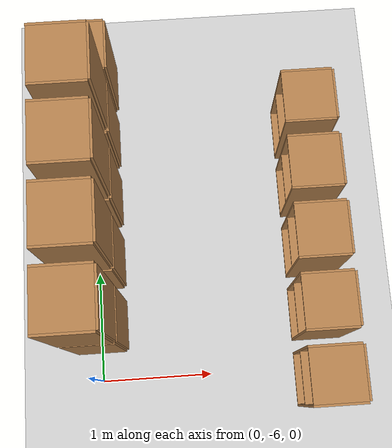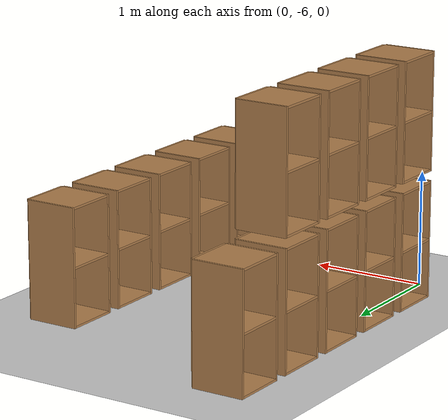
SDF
<sdf version="1.7">
 <world name="default">
  <model name="ground_plane">
   <static>1</static>
   <link name="link">
    <collision name="collision">
     <geometry><plane><normal>0 0 1</normal><size>100 100</size></plane></geometry>
     <surface><friction><ode><mu>100</mu><mu2>50</mu2></ode></friction></surface>
    </collision>
    <visual name="visual">
     <cast_shadows>0</cast_shadows>
     <geometry><plane><normal>0 0 1</normal><size>100 100</size></plane></geometry>
     <material>
      <script><uri>file://media/materials/scripts/gazebo.material</uri><name>Gazebo/Grey</name></script>
     </material>
    </visual>
   </link>
  </model>
  <model name="cabinet_35">
   <static>1</static>
   <link name="cabinet_bottom_plate">
    <inertial>
     <pose>0 0 -1 0 -0 0</pose>
     <inertia><ixx>2.05</ixx><ixy>0</ixy><ixz>0</ixz><iyy>2.05</iyy><iyz>0</iyz><izz>2.05</izz></inertia>
     <mass>25</mass>
    </inertial>
    <collision name="cabinet_bottom_plate_geom">
     <pose>0 0 0.01 0 -0 0</pose>
     <geometry><box><size>0.45 0.45 0.02</size></box></geometry>
    </collision>
    <visual name="cabinet_bottom_plate_geom_visual">
     <pose>0 0 0.01 0 -0 0</pose>
     <geometry><box><size>0.45 0.45 0.02</size></box></geometry>
     <material>
      <script><uri>file://media/materials/scripts/gazebo.material</uri><name>Gazebo/Wood</name></script>
     </material>
    </visual>
    <collision name="cabinet_bottom_plate_geom_cabinet_back_plate">
     <pose>0.235 0 0.51 0 -0 0</pose>
     <geometry><box><size>0.02 0.45 1.02</size></box></geometry>
    </collision>
    <visual name="cabinet_bottom_plate_geom_cabinet_back_plate_visual">
     <pose>0.235 0 0.51 0 -0 0</pose>
     <geometry><box><size>0.02 0.45 1.02</size></box></geometry>
     <material>
      <script><uri>file://media/materials/scripts/gazebo.material</uri><name>Gazebo/Wood</name></script>
     </material>
    </visual>
    <collision name="cabinet_bottom_plate_geom_cabinet_left_plate">
     <pose>0 0.235 0.51 0 -0 0</pose>
     <geometry><box><size>0.45 0.02 1.02</size></box></geometry>
    </collision>
    <visual name="cabinet_bottom_plate_geom_cabinet_left_plate_visual">
     <pose>0 0.235 0.51 0 -0 0</pose>
     <geometry><box><size>0.45 0.02 1.02</size></box></geometry>
     <material>
      <script><uri>file://media/materials/scripts/gazebo.material</uri><name>Gazebo/Wood</name></script>
     </material>
    </visual>
    <collision name="cabinet_bottom_plate_geom_cabinet_middle_plate">
     <pose>0 0 0.51 0 -0 0</pose>
     <geometry><box><size>0.45 0.45 0.02</size></box></geometry>
    </collision>
    <visual name="cabinet_bottom_plate_geom_cabinet_middle_plate_visual">
     <pose>0 0 0.51 0 -0 0</pose>
     <geometry><box><size>0.45 0.45 0.02</size></box></geometry>
     <material>
      <script><uri>file://media/materials/scripts/gazebo.material</uri><name>Gazebo/Wood</name></script>
     </material>
    </visual>
    <collision name="cabinet_bottom_plate_geom_cabinet_right_plate">
     <pose>0 -0.235 0.51 0 -0 0</pose>
     <geometry><box><size>0.45 0.02 1.02</size></box></geometry>
    </collision>
    <visual name="cabinet_bottom_plate_geom_cabinet_right_plate_visual">
     <pose>0 -0.235 0.51 0 -0 0</pose>
     <geometry><box><size>0.45 0.02 1.02</size></box></geometry>
     <material>
      <script><uri>file://media/materials/scripts/gazebo.material</uri><name>Gazebo/Wood</name></script>
     </material>
    </visual>
    <collision name="cabinet_bottom_plate_geom_cabinet_top_plate">
     <pose>0 0 1.01 0 -0 0</pose>
     <geometry><box><size>0.45 0.45 0.02</size></box></geometry>
    </collision>
    <visual name="cabinet_bottom_plate_geom_cabinet_top_plate_visual">
     <pose>0 0 1.01 0 -0 0</pose>
     <geometry><box><size>0.45 0.45 0.02</size></box></geometry>
     <material>
      <script><uri>file://media/materials/scripts/gazebo.material</uri><name>Gazebo/Wood</name></script>
     </material>
    </visual>
   </link>
   <pose>2 -3.7 0 0 -0 0</pose>
  </model>
  <model name="cabinet_36">
   <static>1</static>
   <link name="cabinet_bottom_plate">
    <inertial>
     <pose>0 0 -1 0 -0 0</pose>
     <inertia><ixx>2.05</ixx><ixy>0</ixy><ixz>0</ixz><iyy>2.05</iyy><iyz>0</iyz><izz>2.05</izz></inertia>
     <mass>25</mass>
    </inertial>
    <collision name="cabinet_bottom_plate_geom">
     <pose>0 0 0.01 0 -0 0</pose>
     <geometry><box><size>0.45 0.45 0.02</size></box></geometry>
    </collision>
    <visual name="cabinet_bottom_plate_geom_visual">
     <pose>0 0 0.01 0 -0 0</pose>
     <geometry><box><size>0.45 0.45 0.02</size></box></geometry>
     <material>
      <script><uri>file://media/materials/scripts/gazebo.material</uri><name>Gazebo/Wood</name></script>
     </material>
    </visual>
    <collision name="cabinet_bottom_plate_geom_cabinet_back_plate">
     <pose>0.235 0 0.51 0 -0 0</pose>
     <geometry><box><size>0.02 0.45 1.02</size></box></geometry>
    </collision>
    <visual name="cabinet_bottom_plate_geom_cabinet_back_plate_visual">
     <pose>0.235 0 0.51 0 -0 0</pose>
     <geometry><box><size>0.02 0.45 1.02</size></box></geometry>
     <material>
      <script><uri>file://media/materials/scripts/gazebo.material</uri><name>Gazebo/Wood</name></script>
     </material>
    </visual>
    <collision name="cabinet_bottom_plate_geom_cabinet_left_plate">
     <pose>0 0.235 0.51 0 -0 0</pose>
     <geometry><box><size>0.45 0.02 1.02</size></box></geometry>
    </collision>
    <visual name="cabinet_bottom_plate_geom_cabinet_left_plate_visual">
     <pose>0 0.235 0.51 0 -0 0</pose>
     <geometry><box><size>0.45 0.02 1.02</size></box></geometry>
     <material>
      <script><uri>file://media/materials/scripts/gazebo.material</uri><name>Gazebo/Wood</name></script>
     </material>
    </visual>
    <collision name="cabinet_bottom_plate_geom_cabinet_middle_plate">
     <pose>0 0 0.51 0 -0 0</pose>
     <geometry><box><size>0.45 0.45 0.02</size></box></geometry>
    </collision>
    <visual name="cabinet_bottom_plate_geom_cabinet_middle_plate_visual">
     <pose>0 0 0.51 0 -0 0</pose>
     <geometry><box><size>0.45 0.45 0.02</size></box></geometry>
     <material>
      <script><uri>file://media/materials/scripts/gazebo.material</uri><name>Gazebo/Wood</name></script>
     </material>
    </visual>
    <collision name="cabinet_bottom_plate_geom_cabinet_right_plate">
     <pose>0 -0.235 0.51 0 -0 0</pose>
     <geometry><box><size>0.45 0.02 1.02</size></box></geometry>
    </collision>
    <visual name="cabinet_bottom_plate_geom_cabinet_right_plate_visual">
     <pose>0 -0.235 0.51 0 -0 0</pose>
     <geometry><box><size>0.45 0.02 1.02</size></box></geometry>
     <material>
      <script><uri>file://media/materials/scripts/gazebo.material</uri><name>Gazebo/Wood</name></script>
     </material>
    </visual>
    <collision name="cabinet_bottom_plate_geom_cabinet_top_plate">
     <pose>0 0 1.01 0 -0 0</pose>
     <geometry><box><size>0.45 0.45 0.02</size></box></geometry>
    </collision>
    <visual name="cabinet_bottom_plate_geom_cabinet_top_plate_visual">
     <pose>0 0 1.01 0 -0 0</pose>
     <geometry><box><size>0.45 0.45 0.02</size></box></geometry>
     <material>
      <script><uri>file://media/materials/scripts/gazebo.material</uri><name>Gazebo/Wood</name></script>
     </material>
    </visual>
   </link>
   <pose>2 -4.3 0 0 -0 0</pose>
  </model>
  <model name="cabinet_37">
   <static>1</static>
   <link name="cabinet_bottom_plate">
    <inertial>
     <pose>0 0 -1 0 -0 0</pose>
     <inertia><ixx>2.05</ixx><ixy>0</ixy><ixz>0</ixz><iyy>2.05</iyy><iyz>0</iyz><izz>2.05</izz></inertia>
     <mass>25</mass>
    </inertial>
    <collision name="cabinet_bottom_plate_geom">
     <pose>0 0 0.01 0 -0 0</pose>
     <geometry><box><size>0.45 0.45 0.02</size></box></geometry>
    </collision>
    <visual name="cabinet_bottom_plate_geom_visual">
     <pose>0 0 0.01 0 -0 0</pose>
     <geometry><box><size>0.45 0.45 0.02</size></box></geometry>
     <material>
      <script><uri>file://media/materials/scripts/gazebo.material</uri><name>Gazebo/Wood</name></script>
     </material>
    </visual>
    <collision name="cabinet_bottom_plate_geom_cabinet_back_plate">
     <pose>0.235 0 0.51 0 -0 0</pose>
     <geometry><box><size>0.02 0.45 1.02</size></box></geometry>
    </collision>
    <visual name="cabinet_bottom_plate_geom_cabinet_back_plate_visual">
     <pose>0.235 0 0.51 0 -0 0</pose>
     <geometry><box><size>0.02 0.45 1.02</size></box></geometry>
     <material>
      <script><uri>file://media/materials/scripts/gazebo.material</uri><name>Gazebo/Wood</name></script>
     </material>
    </visual>
    <collision name="cabinet_bottom_plate_geom_cabinet_left_plate">
     <pose>0 0.235 0.51 0 -0 0</pose>
     <geometry><box><size>0.45 0.02 1.02</size></box></geometry>
    </collision>
    <visual name="cabinet_bottom_plate_geom_cabinet_left_plate_visual">
     <pose>0 0.235 0.51 0 -0 0</pose>
     <geometry><box><size>0.45 0.02 1.02</size></box></geometry>
     <material>
      <script><uri>file://media/materials/scripts/gazebo.material</uri><name>Gazebo/Wood</name></script>
     </material>
    </visual>
    <collision name="cabinet_bottom_plate_geom_cabinet_middle_plate">
     <pose>0 0 0.51 0 -0 0</pose>
     <geometry><box><size>0.45 0.45 0.02</size></box></geometry>
    </collision>
    <visual name="cabinet_bottom_plate_geom_cabinet_middle_plate_visual">
     <pose>0 0 0.51 0 -0 0</pose>
     <geometry><box><size>0.45 0.45 0.02</size></box></geometry>
     <material>
      <script><uri>file://media/materials/scripts/gazebo.material</uri><name>Gazebo/Wood</name></script>
     </material>
    </visual>
    <collision name="cabinet_bottom_plate_geom_cabinet_right_plate">
     <pose>0 -0.235 0.51 0 -0 0</pose>
     <geometry><box><size>0.45 0.02 1.02</size></box></geometry>
    </collision>
    <visual name="cabinet_bottom_plate_geom_cabinet_right_plate_visual">
     <pose>0 -0.235 0.51 0 -0 0</pose>
     <geometry><box><size>0.45 0.02 1.02</size></box></geometry>
     <material>
      <script><uri>file://media/materials/scripts/gazebo.material</uri><name>Gazebo/Wood</name></script>
     </material>
    </visual>
    <collision name="cabinet_bottom_plate_geom_cabinet_top_plate">
     <pose>0 0 1.01 0 -0 0</pose>
     <geometry><box><size>0.45 0.45 0.02</size></box></geometry>
    </collision>
    <visual name="cabinet_bottom_plate_geom_cabinet_top_plate_visual">
     <pose>0 0 1.01 0 -0 0</pose>
     <geometry><box><size>0.45 0.45 0.02</size></box></geometry>
     <material>
      <script><uri>file://media/materials/scripts/gazebo.material</uri><name>Gazebo/Wood</name></script>
     </material>
    </visual>
   </link>
   <pose>2 -4.9 0 0 -0 0</pose>
  </model>
  <model name="cabinet_38">
   <static>1</static>
   <link name="cabinet_bottom_plate">
    <inertial>
     <pose>0 0 -1 0 -0 0</pose>
     <inertia><ixx>2.05</ixx><ixy>0</ixy><ixz>0</ixz><iyy>2.05</iyy><iyz>0</iyz><izz>2.05</izz></inertia>
     <mass>25</mass>
    </inertial>
    <collision name="cabinet_bottom_plate_geom">
     <pose>0 0 0.01 0 -0 0</pose>
     <geometry><box><size>0.45 0.45 0.02</size></box></geometry>
    </collision>
    <visual name="cabinet_bottom_plate_geom_visual">
     <pose>0 0 0.01 0 -0 0</pose>
     <geometry><box><size>0.45 0.45 0.02</size></box></geometry>
     <material>
      <script><uri>file://media/materials/scripts/gazebo.material</uri><name>Gazebo/Wood</name></script>
     </material>
    </visual>
    <collision name="cabinet_bottom_plate_geom_cabinet_back_plate">
     <pose>0.235 0 0.51 0 -0 0</pose>
     <geometry><box><size>0.02 0.45 1.02</size></box></geometry>
    </collision>
    <visual name="cabinet_bottom_plate_geom_cabinet_back_plate_visual">
     <pose>0.235 0 0.51 0 -0 0</pose>
     <geometry><box><size>0.02 0.45 1.02</size></box></geometry>
     <material>
      <script><uri>file://media/materials/scripts/gazebo.material</uri><name>Gazebo/Wood</name></script>
     </material>
    </visual>
    <collision name="cabinet_bottom_plate_geom_cabinet_left_plate">
     <pose>0 0.235 0.51 0 -0 0</pose>
     <geometry><box><size>0.45 0.02 1.02</size></box></geometry>
    </collision>
    <visual name="cabinet_bottom_plate_geom_cabinet_left_plate_visual">
     <pose>0 0.235 0.51 0 -0 0</pose>
     <geometry><box><size>0.45 0.02 1.02</size></box></geometry>
     <material>
      <script><uri>file://media/materials/scripts/gazebo.material</uri><name>Gazebo/Wood</name></script>
     </material>
    </visual>
    <collision name="cabinet_bottom_plate_geom_cabinet_middle_plate">
     <pose>0 0 0.51 0 -0 0</pose>
     <geometry><box><size>0.45 0.45 0.02</size></box></geometry>
    </collision>
    <visual name="cabinet_bottom_plate_geom_cabinet_middle_plate_visual">
     <pose>0 0 0.51 0 -0 0</pose>
     <geometry><box><size>0.45 0.45 0.02</size></box></geometry>
     <material>
      <script><uri>file://media/materials/scripts/gazebo.material</uri><name>Gazebo/Wood</name></script>
     </material>
    </visual>
    <collision name="cabinet_bottom_plate_geom_cabinet_right_plate">
     <pose>0 -0.235 0.51 0 -0 0</pose>
     <geometry><box><size>0.45 0.02 1.02</size></box></geometry>
    </collision>
    <visual name="cabinet_bottom_plate_geom_cabinet_right_plate_visual">
     <pose>0 -0.235 0.51 0 -0 0</pose>
     <geometry><box><size>0.45 0.02 1.02</size></box></geometry>
     <material>
      <script><uri>file://media/materials/scripts/gazebo.material</uri><name>Gazebo/Wood</name></script>
     </material>
    </visual>
    <collision name="cabinet_bottom_plate_geom_cabinet_top_plate">
     <pose>0 0 1.01 0 -0 0</pose>
     <geometry><box><size>0.45 0.45 0.02</size></box></geometry>
    </collision>
    <visual name="cabinet_bottom_plate_geom_cabinet_top_plate_visual">
     <pose>0 0 1.01 0 -0 0</pose>
     <geometry><box><size>0.45 0.45 0.02</size></box></geometry>
     <material>
      <script><uri>file://media/materials/scripts/gazebo.material</uri><name>Gazebo/Wood</name></script>
     </material>
    </visual>
   </link>
   <pose>2 -5.5 0 0 -0 0</pose>
  </model>
  <model name="cabinet_39">
   <static>1</static>
   <link name="cabinet_bottom_plate">
    <inertial>
     <pose>0 0 -1 0 -0 0</pose>
     <inertia><ixx>2.05</ixx><ixy>0</ixy><ixz>0</ixz><iyy>2.05</iyy><iyz>0</iyz><izz>2.05</izz></inertia>
     <mass>25</mass>
    </inertial>
    <collision name="cabinet_bottom_plate_geom">
     <pose>0 0 0.01 0 -0 0</pose>
     <geometry><box><size>0.45 0.45 0.02</size></box></geometry>
    </collision>
    <visual name="cabinet_bottom_plate_geom_visual">
     <pose>0 0 0.01 0 -0 0</pose>
     <geometry><box><size>0.45 0.45 0.02</size></box></geometry>
     <material>
      <script><uri>file://media/materials/scripts/gazebo.material</uri><name>Gazebo/Wood</name></script>
     </material>
    </visual>
    <collision name="cabinet_bottom_plate_geom_cabinet_back_plate">
     <pose>0.235 0 0.51 0 -0 0</pose>
     <geometry><box><size>0.02 0.45 1.02</size></box></geometry>
    </collision>
    <visual name="cabinet_bottom_plate_geom_cabinet_back_plate_visual">
     <pose>0.235 0 0.51 0 -0 0</pose>
     <geometry><box><size>0.02 0.45 1.02</size></box></geometry>
     <material>
      <script><uri>file://media/materials/scripts/gazebo.material</uri><name>Gazebo/Wood</name></script>
     </material>
    </visual>
    <collision name="cabinet_bottom_plate_geom_cabinet_left_plate">
     <pose>0 0.235 0.51 0 -0 0</pose>
     <geometry><box><size>0.45 0.02 1.02</size></box></geometry>
    </collision>
    <visual name="cabinet_bottom_plate_geom_cabinet_left_plate_visual">
     <pose>0 0.235 0.51 0 -0 0</pose>
     <geometry><box><size>0.45 0.02 1.02</size></box></geometry>
     <material>
      <script><uri>file://media/materials/scripts/gazebo.material</uri><name>Gazebo/Wood</name></script>
     </material>
    </visual>
    <collision name="cabinet_bottom_plate_geom_cabinet_middle_plate">
     <pose>0 0 0.51 0 -0 0</pose>
     <geometry><box><size>0.45 0.45 0.02</size></box></geometry>
    </collision>
    <visual name="cabinet_bottom_plate_geom_cabinet_middle_plate_visual">
     <pose>0 0 0.51 0 -0 0</pose>
     <geometry><box><size>0.45 0.45 0.02</size></box></geometry>
     <material>
      <script><uri>file://media/materials/scripts/gazebo.material</uri><name>Gazebo/Wood</name></script>
     </material>
    </visual>
    <collision name="cabinet_bottom_plate_geom_cabinet_right_plate">
     <pose>0 -0.235 0.51 0 -0 0</pose>
     <geometry><box><size>0.45 0.02 1.02</size></box></geometry>
    </collision>
    <visual name="cabinet_bottom_plate_geom_cabinet_right_plate_visual">
     <pose>0 -0.235 0.51 0 -0 0</pose>
     <geometry><box><size>0.45 0.02 1.02</size></box></geometry>
     <material>
      <script><uri>file://media/materials/scripts/gazebo.material</uri><name>Gazebo/Wood</name></script>
     </material>
    </visual>
    <collision name="cabinet_bottom_plate_geom_cabinet_top_plate">
     <pose>0 0 1.01 0 -0 0</pose>
     <geometry><box><size>0.45 0.45 0.02</size></box></geometry>
    </collision>
    <visual name="cabinet_bottom_plate_geom_cabinet_top_plate_visual">
     <pose>0 0 1.01 0 -0 0</pose>
     <geometry><box><size>0.45 0.45 0.02</size></box></geometry>
     <material>
      <script><uri>file://media/materials/scripts/gazebo.material</uri><name>Gazebo/Wood</name></script>
     </material>
    </visual>
   </link>
   <pose>2 -6.1 0 0 -0 0</pose>
  </model>
  <model name="cabinet_47">
   <static>1</static>
   <link name="cabinet_bottom_plate">
    <inertial>
     <pose>0 0 -1 0 -0 0</pose>
     <inertia><ixx>2.05</ixx><ixy>0</ixy><ixz>0</ixz><iyy>2.05</iyy><iyz>0</iyz><izz>2.05</izz></inertia>
     <mass>25</mass>
    </inertial>
    <collision name="cabinet_bottom_plate_geom">
     <pose>0 0 0.01 0 -0 0</pose>
     <geometry><box><size>0.45 0.45 0.02</size></box></geometry>
    </collision>
    <visual name="cabinet_bottom_plate_geom_visual">
     <pose>0 0 0.01 0 -0 0</pose>
     <geometry><box><size>0.45 0.45 0.02</size></box></geometry>
     <material>
      <script><uri>file://media/materials/scripts/gazebo.material</uri><name>Gazebo/Wood</name></script>
     </material>
    </visual>
    <collision name="cabinet_bottom_plate_geom_cabinet_back_plate">
     <pose>0.235 0 0.51 0 -0 0</pose>
     <geometry><box><size>0.02 0.45 1.02</size></box></geometry>
    </collision>
    <visual name="cabinet_bottom_plate_geom_cabinet_back_plate_visual">
     <pose>0.235 0 0.51 0 -0 0</pose>
     <geometry><box><size>0.02 0.45 1.02</size></box></geometry>
     <material>
      <script><uri>file://media/materials/scripts/gazebo.material</uri><name>Gazebo/Wood</name></script>
     </material>
    </visual>
    <collision name="cabinet_bottom_plate_geom_cabinet_left_plate">
     <pose>0 0.235 0.51 0 -0 0</pose>
     <geometry><box><size>0.45 0.02 1.02</size></box></geometry>
    </collision>
    <visual name="cabinet_bottom_plate_geom_cabinet_left_plate_visual">
     <pose>0 0.235 0.51 0 -0 0</pose>
     <geometry><box><size>0.45 0.02 1.02</size></box></geometry>
     <material>
      <script><uri>file://media/materials/scripts/gazebo.material</uri><name>Gazebo/Wood</name></script>
     </material>
    </visual>
    <collision name="cabinet_bottom_plate_geom_cabinet_middle_plate">
     <pose>0 0 0.51 0 -0 0</pose>
     <geometry><box><size>0.45 0.45 0.02</size></box></geometry>
    </collision>
    <visual name="cabinet_bottom_plate_geom_cabinet_middle_plate_visual">
     <pose>0 0 0.51 0 -0 0</pose>
     <geometry><box><size>0.45 0.45 0.02</size></box></geometry>
     <material>
      <script><uri>file://media/materials/scripts/gazebo.material</uri><name>Gazebo/Wood</name></script>
     </material>
    </visual>
    <collision name="cabinet_bottom_plate_geom_cabinet_right_plate">
     <pose>0 -0.235 0.51 0 -0 0</pose>
     <geometry><box><size>0.45 0.02 1.02</size></box></geometry>
    </collision>
    <visual name="cabinet_bottom_plate_geom_cabinet_right_plate_visual">
     <pose>0 -0.235 0.51 0 -0 0</pose>
     <geometry><box><size>0.45 0.02 1.02</size></box></geometry>
     <material>
      <script><uri>file://media/materials/scripts/gazebo.material</uri><name>Gazebo/Wood</name></script>
     </material>
    </visual>
    <collision name="cabinet_bottom_plate_geom_cabinet_top_plate">
     <pose>0 0 1.01 0 -0 0</pose>
     <geometry><box><size>0.45 0.45 0.02</size></box></geometry>
    </collision>
    <visual name="cabinet_bottom_plate_geom_cabinet_top_plate_visual">
     <pose>0 0 1.01 0 -0 0</pose>
     <geometry><box><size>0.45 0.45 0.02</size></box></geometry>
     <material>
      <script><uri>file://media/materials/scripts/gazebo.material</uri><name>Gazebo/Wood</name></script>
     </material>
    </visual>
   </link>
   <pose>0 -3.1 0 0 -0 0</pose>
  </model>
  <model name="cabinet_49">
   <static>1</static>
   <link name="cabinet_bottom_plate">
    <inertial>
     <pose>0 0 -1 0 -0 0</pose>
     <inertia><ixx>2.05</ixx><ixy>0</ixy><ixz>0</ixz><iyy>2.05</iyy><iyz>0</iyz><izz>2.05</izz></inertia>
     <mass>25</mass>
    </inertial>
    <collision name="cabinet_bottom_plate_geom">
     <pose>0 0 0.01 0 -0 0</pose>
     <geometry><box><size>0.45 0.45 0.02</size></box></geometry>
    </collision>
    <visual name="cabinet_bottom_plate_geom_visual">
     <pose>0 0 0.01 0 -0 0</pose>
     <geometry><box><size>0.45 0.45 0.02</size></box></geometry>
     <material>
      <script><uri>file://media/materials/scripts/gazebo.material</uri><name>Gazebo/Wood</name></script>
     </material>
    </visual>
    <collision name="cabinet_bottom_plate_geom_cabinet_back_plate">
     <pose>0.235 0 0.51 0 -0 0</pose>
     <geometry><box><size>0.02 0.45 1.02</size></box></geometry>
    </collision>
    <visual name="cabinet_bottom_plate_geom_cabinet_back_plate_visual">
     <pose>0.235 0 0.51 0 -0 0</pose>
     <geometry><box><size>0.02 0.45 1.02</size></box></geometry>
     <material>
      <script><uri>file://media/materials/scripts/gazebo.material</uri><name>Gazebo/Wood</name></script>
     </material>
    </visual>
    <collision name="cabinet_bottom_plate_geom_cabinet_left_plate">
     <pose>0 0.235 0.51 0 -0 0</pose>
     <geometry><box><size>0.45 0.02 1.02</size></box></geometry>
    </collision>
    <visual name="cabinet_bottom_plate_geom_cabinet_left_plate_visual">
     <pose>0 0.235 0.51 0 -0 0</pose>
     <geometry><box><size>0.45 0.02 1.02</size></box></geometry>
     <material>
      <script><uri>file://media/materials/scripts/gazebo.material</uri><name>Gazebo/Wood</name></script>
     </material>
    </visual>
    <collision name="cabinet_bottom_plate_geom_cabinet_middle_plate">
     <pose>0 0 0.51 0 -0 0</pose>
     <geometry><box><size>0.45 0.45 0.02</size></box></geometry>
    </collision>
    <visual name="cabinet_bottom_plate_geom_cabinet_middle_plate_visual">
     <pose>0 0 0.51 0 -0 0</pose>
     <geometry><box><size>0.45 0.45 0.02</size></box></geometry>
     <material>
      <script><uri>file://media/materials/scripts/gazebo.material</uri><name>Gazebo/Wood</name></script>
     </material>
    </visual>
    <collision name="cabinet_bottom_plate_geom_cabinet_right_plate">
     <pose>0 -0.235 0.51 0 -0 0</pose>
     <geometry><box><size>0.45 0.02 1.02</size></box></geometry>
    </collision>
    <visual name="cabinet_bottom_plate_geom_cabinet_right_plate_visual">
     <pose>0 -0.235 0.51 0 -0 0</pose>
     <geometry><box><size>0.45 0.02 1.02</size></box></geometry>
     <material>
      <script><uri>file://media/materials/scripts/gazebo.material</uri><name>Gazebo/Wood</name></script>
     </material>
    </visual>
    <collision name="cabinet_bottom_plate_geom_cabinet_top_plate">
     <pose>0 0 1.01 0 -0 0</pose>
     <geometry><box><size>0.45 0.45 0.02</size></box></geometry>
    </collision>
    <visual name="cabinet_bottom_plate_geom_cabinet_top_plate_visual">
     <pose>0 0 1.01 0 -0 0</pose>
     <geometry><box><size>0.45 0.45 0.02</size></box></geometry>
     <material>
      <script><uri>file://media/materials/scripts/gazebo.material</uri><name>Gazebo/Wood</name></script>
     </material>
    </visual>
   </link>
   <pose>0 -3.7 0 0 -0 0</pose>
  </model>
  <model name="cabinet_50">
   <static>1</static>
   <link name="cabinet_bottom_plate">
    <inertial>
     <pose>0 0 -1 0 -0 0</pose>
     <inertia><ixx>2.05</ixx><ixy>0</ixy><ixz>0</ixz><iyy>2.05</iyy><iyz>0</iyz><izz>2.05</izz></inertia>
     <mass>25</mass>
    </inertial>
    <collision name="cabinet_bottom_plate_geom">
     <pose>0 0 0.01 0 -0 0</pose>
     <geometry><box><size>0.45 0.45 0.02</size></box></geometry>
    </collision>
    <visual name="cabinet_bottom_plate_geom_visual">
     <pose>0 0 0.01 0 -0 0</pose>
     <geometry><box><size>0.45 0.45 0.02</size></box></geometry>
     <material>
      <script><uri>file://media/materials/scripts/gazebo.material</uri><name>Gazebo/Wood</name></script>
     </material>
    </visual>
    <collision name="cabinet_bottom_plate_geom_cabinet_back_plate">
     <pose>0.235 0 0.51 0 -0 0</pose>
     <geometry><box><size>0.02 0.45 1.02</size></box></geometry>
    </collision>
    <visual name="cabinet_bottom_plate_geom_cabinet_back_plate_visual">
     <pose>0.235 0 0.51 0 -0 0</pose>
     <geometry><box><size>0.02 0.45 1.02</size></box></geometry>
     <material>
      <script><uri>file://media/materials/scripts/gazebo.material</uri><name>Gazebo/Wood</name></script>
     </material>
    </visual>
    <collision name="cabinet_bottom_plate_geom_cabinet_left_plate">
     <pose>0 0.235 0.51 0 -0 0</pose>
     <geometry><box><size>0.45 0.02 1.02</size></box></geometry>
    </collision>
    <visual name="cabinet_bottom_plate_geom_cabinet_left_plate_visual">
     <pose>0 0.235 0.51 0 -0 0</pose>
     <geometry><box><size>0.45 0.02 1.02</size></box></geometry>
     <material>
      <script><uri>file://media/materials/scripts/gazebo.material</uri><name>Gazebo/Wood</name></script>
     </material>
    </visual>
    <collision name="cabinet_bottom_plate_geom_cabinet_middle_plate">
     <pose>0 0 0.51 0 -0 0</pose>
     <geometry><box><size>0.45 0.45 0.02</size></box></geometry>
    </collision>
    <visual name="cabinet_bottom_plate_geom_cabinet_middle_plate_visual">
     <pose>0 0 0.51 0 -0 0</pose>
     <geometry><box><size>0.45 0.45 0.02</size></box></geometry>
     <material>
      <script><uri>file://media/materials/scripts/gazebo.material</uri><name>Gazebo/Wood</name></script>
     </material>
    </visual>
    <collision name="cabinet_bottom_plate_geom_cabinet_right_plate">
     <pose>0 -0.235 0.51 0 -0 0</pose>
     <geometry><box><size>0.45 0.02 1.02</size></box></geometry>
    </collision>
    <visual name="cabinet_bottom_plate_geom_cabinet_right_plate_visual">
     <pose>0 -0.235 0.51 0 -0 0</pose>
     <geometry><box><size>0.45 0.02 1.02</size></box></geometry>
     <material>
      <script><uri>file://media/materials/scripts/gazebo.material</uri><name>Gazebo/Wood</name></script>
     </material>
    </visual>
    <collision name="cabinet_bottom_plate_geom_cabinet_top_plate">
     <pose>0 0 1.01 0 -0 0</pose>
     <geometry><box><size>0.45 0.45 0.02</size></box></geometry>
    </collision>
    <visual name="cabinet_bottom_plate_geom_cabinet_top_plate_visual">
     <pose>0 0 1.01 0 -0 0</pose>
     <geometry><box><size>0.45 0.45 0.02</size></box></geometry>
     <material>
      <script><uri>file://media/materials/scripts/gazebo.material</uri><name>Gazebo/Wood</name></script>
     </material>
    </visual>
   </link>
   <pose>0 -4.3 0 0 -0 0</pose>
  </model>
  <model name="cabinet_51">
   <static>1</static>
   <link name="cabinet_bottom_plate">
    <inertial>
     <pose>0 0 -1 0 -0 0</pose>
     <inertia><ixx>2.05</ixx><ixy>0</ixy><ixz>0</ixz><iyy>2.05</iyy><iyz>0</iyz><izz>2.05</izz></inertia>
     <mass>25</mass>
    </inertial>
    <collision name="cabinet_bottom_plate_geom">
     <pose>0 0 0.01 0 -0 0</pose>
     <geometry><box><size>0.45 0.45 0.02</size></box></geometry>
    </collision>
    <visual name="cabinet_bottom_plate_geom_visual">
     <pose>0 0 0.01 0 -0 0</pose>
     <geometry><box><size>0.45 0.45 0.02</size></box></geometry>
     <material>
      <script><uri>file://media/materials/scripts/gazebo.material</uri><name>Gazebo/Wood</name></script>
     </material>
    </visual>
    <collision name="cabinet_bottom_plate_geom_cabinet_back_plate">
     <pose>0.235 0 0.51 0 -0 0</pose>
     <geometry><box><size>0.02 0.45 1.02</size></box></geometry>
    </collision>
    <visual name="cabinet_bottom_plate_geom_cabinet_back_plate_visual">
     <pose>0.235 0 0.51 0 -0 0</pose>
     <geometry><box><size>0.02 0.45 1.02</size></box></geometry>
     <material>
      <script><uri>file://media/materials/scripts/gazebo.material</uri><name>Gazebo/Wood</name></script>
     </material>
    </visual>
    <collision name="cabinet_bottom_plate_geom_cabinet_left_plate">
     <pose>0 0.235 0.51 0 -0 0</pose>
     <geometry><box><size>0.45 0.02 1.02</size></box></geometry>
    </collision>
    <visual name="cabinet_bottom_plate_geom_cabinet_left_plate_visual">
     <pose>0 0.235 0.51 0 -0 0</pose>
     <geometry><box><size>0.45 0.02 1.02</size></box></geometry>
     <material>
      <script><uri>file://media/materials/scripts/gazebo.material</uri><name>Gazebo/Wood</name></script>
     </material>
    </visual>
    <collision name="cabinet_bottom_plate_geom_cabinet_middle_plate">
     <pose>0 0 0.51 0 -0 0</pose>
     <geometry><box><size>0.45 0.45 0.02</size></box></geometry>
    </collision>
    <visual name="cabinet_bottom_plate_geom_cabinet_middle_plate_visual">
     <pose>0 0 0.51 0 -0 0</pose>
     <geometry><box><size>0.45 0.45 0.02</size></box></geometry>
     <material>
      <script><uri>file://media/materials/scripts/gazebo.material</uri><name>Gazebo/Wood</name></script>
     </material>
    </visual>
    <collision name="cabinet_bottom_plate_geom_cabinet_right_plate">
     <pose>0 -0.235 0.51 0 -0 0</pose>
     <geometry><box><size>0.45 0.02 1.02</size></box></geometry>
    </collision>
    <visual name="cabinet_bottom_plate_geom_cabinet_right_plate_visual">
     <pose>0 -0.235 0.51 0 -0 0</pose>
     <geometry><box><size>0.45 0.02 1.02</size></box></geometry>
     <material>
      <script><uri>file://media/materials/scripts/gazebo.material</uri><name>Gazebo/Wood</name></script>
     </material>
    </visual>
    <collision name="cabinet_bottom_plate_geom_cabinet_top_plate">
     <pose>0 0 1.01 0 -0 0</pose>
     <geometry><box><size>0.45 0.45 0.02</size></box></geometry>
    </collision>
    <visual name="cabinet_bottom_plate_geom_cabinet_top_plate_visual">
     <pose>0 0 1.01 0 -0 0</pose>
     <geometry><box><size>0.45 0.45 0.02</size></box></geometry>
     <material>
      <script><uri>file://media/materials/scripts/gazebo.material</uri><name>Gazebo/Wood</name></script>
     </material>
    </visual>
   </link>
   <pose>0 -4.9 0 0 -0 0</pose>
  </model>
  <model name="cabinet_52">
   <static>1</static>
   <link name="cabinet_bottom_plate">
    <inertial>
     <pose>0 0 -1 0 -0 0</pose>
     <inertia><ixx>2.05</ixx><ixy>0</ixy><ixz>0</ixz><iyy>2.05</iyy><iyz>0</iyz><izz>2.05</izz></inertia>
     <mass>25</mass>
    </inertial>
    <collision name="cabinet_bottom_plate_geom">
     <pose>0 0 0.01 0 -0 0</pose>
     <geometry><box><size>0.45 0.45 0.02</size></box></geometry>
    </collision>
    <visual name="cabinet_bottom_plate_geom_visual">
     <pose>0 0 0.01 0 -0 0</pose>
     <geometry><box><size>0.45 0.45 0.02</size></box></geometry>
     <material>
      <script><uri>file://media/materials/scripts/gazebo.material</uri><name>Gazebo/Wood</name></script>
     </material>
    </visual>
    <collision name="cabinet_bottom_plate_geom_cabinet_back_plate">
     <pose>0.235 0 0.51 0 -0 0</pose>
     <geometry><box><size>0.02 0.45 1.02</size></box></geometry>
    </collision>
    <visual name="cabinet_bottom_plate_geom_cabinet_back_plate_visual">
     <pose>0.235 0 0.51 0 -0 0</pose>
     <geometry><box><size>0.02 0.45 1.02</size></box></geometry>
     <material>
      <script><uri>file://media/materials/scripts/gazebo.material</uri><name>Gazebo/Wood</name></script>
     </material>
    </visual>
    <collision name="cabinet_bottom_plate_geom_cabinet_left_plate">
     <pose>0 0.235 0.51 0 -0 0</pose>
     <geometry><box><size>0.45 0.02 1.02</size></box></geometry>
    </collision>
    <visual name="cabinet_bottom_plate_geom_cabinet_left_plate_visual">
     <pose>0 0.235 0.51 0 -0 0</pose>
     <geometry><box><size>0.45 0.02 1.02</size></box></geometry>
     <material>
      <script><uri>file://media/materials/scripts/gazebo.material</uri><name>Gazebo/Wood</name></script>
     </material>
    </visual>
    <collision name="cabinet_bottom_plate_geom_cabinet_middle_plate">
     <pose>0 0 0.51 0 -0 0</pose>
     <geometry><box><size>0.45 0.45 0.02</size></box></geometry>
    </collision>
    <visual name="cabinet_bottom_plate_geom_cabinet_middle_plate_visual">
     <pose>0 0 0.51 0 -0 0</pose>
     <geometry><box><size>0.45 0.45 0.02</size></box></geometry>
     <material>
      <script><uri>file://media/materials/scripts/gazebo.material</uri><name>Gazebo/Wood</name></script>
     </material>
    </visual>
    <collision name="cabinet_bottom_plate_geom_cabinet_right_plate">
     <pose>0 -0.235 0.51 0 -0 0</pose>
     <geometry><box><size>0.45 0.02 1.02</size></box></geometry>
    </collision>
    <visual name="cabinet_bottom_plate_geom_cabinet_right_plate_visual">
     <pose>0 -0.235 0.51 0 -0 0</pose>
     <geometry><box><size>0.45 0.02 1.02</size></box></geometry>
     <material>
      <script><uri>file://media/materials/scripts/gazebo.material</uri><name>Gazebo/Wood</name></script>
     </material>
    </visual>
    <collision name="cabinet_bottom_plate_geom_cabinet_top_plate">
     <pose>0 0 1.01 0 -0 0</pose>
     <geometry><box><size>0.45 0.45 0.02</size></box></geometry>
    </collision>
    <visual name="cabinet_bottom_plate_geom_cabinet_top_plate_visual">
     <pose>0 0 1.01 0 -0 0</pose>
     <geometry><box><size>0.45 0.45 0.02</size></box></geometry>
     <material>
      <script><uri>file://media/materials/scripts/gazebo.material</uri><name>Gazebo/Wood</name></script>
     </material>
    </visual>
   </link>
   <pose>0 -5.5 0 0 -0 0</pose>
  </model>
  <model name="cabinet_16_clone_11">
   <static>1</static>
   <link name="cabinet_bottom_plate">
    <inertial>
     <pose>0 0 -1 0 -0 0</pose>
     <inertia><ixx>2.05</ixx><ixy>0</ixy><ixz>0</ixz><iyy>2.05</iyy><iyz>0</iyz><izz>2.05</izz></inertia>
     <mass>25</mass>
    </inertial>
    <collision name="cabinet_bottom_plate_geom">
     <pose>0 0 0.01 0 -0 0</pose>
     <geometry><box><size>0.45 0.45 0.02</size></box></geometry>
    </collision>
    <visual name="cabinet_bottom_plate_geom_visual">
     <pose>0 0 0.01 0 -0 0</pose>
     <geometry><box><size>0.45 0.45 0.02</size></box></geometry>
     <material>
      <script><uri>file://media/materials/scripts/gazebo.material</uri><name>Gazebo/Wood</name></script>
     </material>
    </visual>
    <collision name="cabinet_bottom_plate_geom_cabinet_back_plate">
     <pose>0.235 0 0.51 0 -0 0</pose>
     <geometry><box><size>0.02 0.45 1.02</size></box></geometry>
    </collision>
    <visual name="cabinet_bottom_plate_geom_cabinet_back_plate_visual">
     <pose>0.235 0 0.51 0 -0 0</pose>
     <geometry><box><size>0.02 0.45 1.02</size></box></geometry>
     <material>
      <script><uri>file://media/materials/scripts/gazebo.material</uri><name>Gazebo/Wood</name></script>
     </material>
    </visual>
    <collision name="cabinet_bottom_plate_geom_cabinet_left_plate">
     <pose>0 0.235 0.51 0 -0 0</pose>
     <geometry><box><size>0.45 0.02 1.02</size></box></geometry>
    </collision>
    <visual name="cabinet_bottom_plate_geom_cabinet_left_plate_visual">
     <pose>0 0.235 0.51 0 -0 0</pose>
     <geometry><box><size>0.45 0.02 1.02</size></box></geometry>
     <material>
      <script><uri>file://media/materials/scripts/gazebo.material</uri><name>Gazebo/Wood</name></script>
     </material>
    </visual>
    <collision name="cabinet_bottom_plate_geom_cabinet_middle_plate">
     <pose>0 0 0.51 0 -0 0</pose>
     <geometry><box><size>0.45 0.45 0.02</size></box></geometry>
    </collision>
    <visual name="cabinet_bottom_plate_geom_cabinet_middle_plate_visual">
     <pose>0 0 0.51 0 -0 0</pose>
     <geometry><box><size>0.45 0.45 0.02</size></box></geometry>
     <material>
      <script><uri>file://media/materials/scripts/gazebo.material</uri><name>Gazebo/Wood</name></script>
     </material>
    </visual>
    <collision name="cabinet_bottom_plate_geom_cabinet_right_plate">
     <pose>0 -0.235 0.51 0 -0 0</pose>
     <geometry><box><size>0.45 0.02 1.02</size></box></geometry>
    </collision>
    <visual name="cabinet_bottom_plate_geom_cabinet_right_plate_visual">
     <pose>0 -0.235 0.51 0 -0 0</pose>
     <geometry><box><size>0.45 0.02 1.02</size></box></geometry>
     <material>
      <script><uri>file://media/materials/scripts/gazebo.material</uri><name>Gazebo/Wood</name></script>
     </material>
    </visual>
    <collision name="cabinet_bottom_plate_geom_cabinet_top_plate">
     <pose>0 0 1.01 0 -0 0</pose>
     <geometry><box><size>0.45 0.45 0.02</size></box></geometry>
    </collision>
    <visual name="cabinet_bottom_plate_geom_cabinet_top_plate_visual">
     <pose>0 0 1.01 0 -0 0</pose>
     <geometry><box><size>0.45 0.45 0.02</size></box></geometry>
     <material>
      <script><uri>file://media/materials/scripts/gazebo.material</uri><name>Gazebo/Wood</name></script>
     </material>
    </visual>
   </link>
   <pose>0 -3.7 1.1 0 -0 0</pose>
  </model>
  <model name="cabinet_16_clone_12">
   <static>1</static>
   <link name="cabinet_bottom_plate">
    <inertial>
     <pose>0 0 -1 0 -0 0</pose>
     <inertia><ixx>2.05</ixx><ixy>0</ixy><ixz>0</ixz><iyy>2.05</iyy><iyz>0</iyz><izz>2.05</izz></inertia>
     <mass>25</mass>
    </inertial>
    <collision name="cabinet_bottom_plate_geom">
     <pose>0 0 0.01 0 -0 0</pose>
     <geometry><box><size>0.45 0.45 0.02</size></box></geometry>
    </collision>
    <visual name="cabinet_bottom_plate_geom_visual">
     <pose>0 0 0.01 0 -0 0</pose>
     <geometry><box><size>0.45 0.45 0.02</size></box></geometry>
     <material>
      <script><uri>file://media/materials/scripts/gazebo.material</uri><name>Gazebo/Wood</name></script>
     </material>
    </visual>
    <collision name="cabinet_bottom_plate_geom_cabinet_back_plate">
     <pose>0.235 0 0.51 0 -0 0</pose>
     <geometry><box><size>0.02 0.45 1.02</size></box></geometry>
    </collision>
    <visual name="cabinet_bottom_plate_geom_cabinet_back_plate_visual">
     <pose>0.235 0 0.51 0 -0 0</pose>
     <geometry><box><size>0.02 0.45 1.02</size></box></geometry>
     <material>
      <script><uri>file://media/materials/scripts/gazebo.material</uri><name>Gazebo/Wood</name></script>
     </material>
    </visual>
    <collision name="cabinet_bottom_plate_geom_cabinet_left_plate">
     <pose>0 0.235 0.51 0 -0 0</pose>
     <geometry><box><size>0.45 0.02 1.02</size></box></geometry>
    </collision>
    <visual name="cabinet_bottom_plate_geom_cabinet_left_plate_visual">
     <pose>0 0.235 0.51 0 -0 0</pose>
     <geometry><box><size>0.45 0.02 1.02</size></box></geometry>
     <material>
      <script><uri>file://media/materials/scripts/gazebo.material</uri><name>Gazebo/Wood</name></script>
     </material>
    </visual>
    <collision name="cabinet_bottom_plate_geom_cabinet_middle_plate">
     <pose>0 0 0.51 0 -0 0</pose>
     <geometry><box><size>0.45 0.45 0.02</size></box></geometry>
    </collision>
    <visual name="cabinet_bottom_plate_geom_cabinet_middle_plate_visual">
     <pose>0 0 0.51 0 -0 0</pose>
     <geometry><box><size>0.45 0.45 0.02</size></box></geometry>
     <material>
      <script><uri>file://media/materials/scripts/gazebo.material</uri><name>Gazebo/Wood</name></script>
     </material>
    </visual>
    <collision name="cabinet_bottom_plate_geom_cabinet_right_plate">
     <pose>0 -0.235 0.51 0 -0 0</pose>
     <geometry><box><size>0.45 0.02 1.02</size></box></geometry>
    </collision>
    <visual name="cabinet_bottom_plate_geom_cabinet_right_plate_visual">
     <pose>0 -0.235 0.51 0 -0 0</pose>
     <geometry><box><size>0.45 0.02 1.02</size></box></geometry>
     <material>
      <script><uri>file://media/materials/scripts/gazebo.material</uri><name>Gazebo/Wood</name></script>
     </material>
    </visual>
    <collision name="cabinet_bottom_plate_geom_cabinet_top_plate">
     <pose>0 0 1.01 0 -0 0</pose>
     <geometry><box><size>0.45 0.45 0.02</size></box></geometry>
    </collision>
    <visual name="cabinet_bottom_plate_geom_cabinet_top_plate_visual">
     <pose>0 0 1.01 0 -0 0</pose>
     <geometry><box><size>0.45 0.45 0.02</size></box></geometry>
     <material>
      <script><uri>file://media/materials/scripts/gazebo.material</uri><name>Gazebo/Wood</name></script>
     </material>
    </visual>
   </link>
   <pose>0 -4.3 1.1 0 -0 0</pose>
  </model>
  <model name="cabinet_16_clone_13">
   <static>1</static>
   <link name="cabinet_bottom_plate">
    <inertial>
     <pose>0 0 -1 0 -0 0</pose>
     <inertia><ixx>2.05</ixx><ixy>0</ixy><ixz>0</ixz><iyy>2.05</iyy><iyz>0</iyz><izz>2.05</izz></inertia>
     <mass>25</mass>
    </inertial>
    <collision name="cabinet_bottom_plate_geom">
     <pose>0 0 0.01 0 -0 0</pose>
     <geometry><box><size>0.45 0.45 0.02</size></box></geometry>
    </collision>
    <visual name="cabinet_bottom_plate_geom_visual">
     <pose>0 0 0.01 0 -0 0</pose>
     <geometry><box><size>0.45 0.45 0.02</size></box></geometry>
     <material>
      <script><uri>file://media/materials/scripts/gazebo.material</uri><name>Gazebo/Wood</name></script>
     </material>
    </visual>
    <collision name="cabinet_bottom_plate_geom_cabinet_back_plate">
     <pose>0.235 0 0.51 0 -0 0</pose>
     <geometry><box><size>0.02 0.45 1.02</size></box></geometry>
    </collision>
    <visual name="cabinet_bottom_plate_geom_cabinet_back_plate_visual">
     <pose>0.235 0 0.51 0 -0 0</pose>
     <geometry><box><size>0.02 0.45 1.02</size></box></geometry>
     <material>
      <script><uri>file://media/materials/scripts/gazebo.material</uri><name>Gazebo/Wood</name></script>
     </material>
    </visual>
    <collision name="cabinet_bottom_plate_geom_cabinet_left_plate">
     <pose>0 0.235 0.51 0 -0 0</pose>
     <geometry><box><size>0.45 0.02 1.02</size></box></geometry>
    </collision>
    <visual name="cabinet_bottom_plate_geom_cabinet_left_plate_visual">
     <pose>0 0.235 0.51 0 -0 0</pose>
     <geometry><box><size>0.45 0.02 1.02</size></box></geometry>
     <material>
      <script><uri>file://media/materials/scripts/gazebo.material</uri><name>Gazebo/Wood</name></script>
     </material>
    </visual>
    <collision name="cabinet_bottom_plate_geom_cabinet_middle_plate">
     <pose>0 0 0.51 0 -0 0</pose>
     <geometry><box><size>0.45 0.45 0.02</size></box></geometry>
    </collision>
    <visual name="cabinet_bottom_plate_geom_cabinet_middle_plate_visual">
     <pose>0 0 0.51 0 -0 0</pose>
     <geometry><box><size>0.45 0.45 0.02</size></box></geometry>
     <material>
      <script><uri>file://media/materials/scripts/gazebo.material</uri><name>Gazebo/Wood</name></script>
     </material>
    </visual>
    <collision name="cabinet_bottom_plate_geom_cabinet_right_plate">
     <pose>0 -0.235 0.51 0 -0 0</pose>
     <geometry><box><size>0.45 0.02 1.02</size></box></geometry>
    </collision>
    <visual name="cabinet_bottom_plate_geom_cabinet_right_plate_visual">
     <pose>0 -0.235 0.51 0 -0 0</pose>
     <geometry><box><size>0.45 0.02 1.02</size></box></geometry>
     <material>
      <script><uri>file://media/materials/scripts/gazebo.material</uri><name>Gazebo/Wood</name></script>
     </material>
    </visual>
    <collision name="cabinet_bottom_plate_geom_cabinet_top_plate">
     <pose>0 0 1.01 0 -0 0</pose>
     <geometry><box><size>0.45 0.45 0.02</size></box></geometry>
    </collision>
    <visual name="cabinet_bottom_plate_geom_cabinet_top_plate_visual">
     <pose>0 0 1.01 0 -0 0</pose>
     <geometry><box><size>0.45 0.45 0.02</size></box></geometry>
     <material>
      <script><uri>file://media/materials/scripts/gazebo.material</uri><name>Gazebo/Wood</name></script>
     </material>
    </visual>
   </link>
   <pose>0 -4.9 1.1 0 -0 0</pose>
  </model>
  <model name="cabinet_16_clone_14">
   <static>1</static>
   <link name="cabinet_bottom_plate">
    <inertial>
     <pose>0 0 -1 0 -0 0</pose>
     <inertia><ixx>2.05</ixx><ixy>0</ixy><ixz>0</ixz><iyy>2.05</iyy><iyz>0</iyz><izz>2.05</izz></inertia>
     <mass>25</mass>
    </inertial>
    <collision name="cabinet_bottom_plate_geom">
     <pose>0 0 0.01 0 -0 0</pose>
     <geometry><box><size>0.45 0.45 0.02</size></box></geometry>
    </collision>
    <visual name="cabinet_bottom_plate_geom_visual">
     <pose>0 0 0.01 0 -0 0</pose>
     <geometry><box><size>0.45 0.45 0.02</size></box></geometry>
     <material>
      <script><uri>file://media/materials/scripts/gazebo.material</uri><name>Gazebo/Wood</name></script>
     </material>
    </visual>
    <collision name="cabinet_bottom_plate_geom_cabinet_back_plate">
     <pose>0.235 0 0.51 0 -0 0</pose>
     <geometry><box><size>0.02 0.45 1.02</size></box></geometry>
    </collision>
    <visual name="cabinet_bottom_plate_geom_cabinet_back_plate_visual">
     <pose>0.235 0 0.51 0 -0 0</pose>
     <geometry><box><size>0.02 0.45 1.02</size></box></geometry>
     <material>
      <script><uri>file://media/materials/scripts/gazebo.material</uri><name>Gazebo/Wood</name></script>
     </material>
    </visual>
    <collision name="cabinet_bottom_plate_geom_cabinet_left_plate">
     <pose>0 0.235 0.51 0 -0 0</pose>
     <geometry><box><size>0.45 0.02 1.02</size></box></geometry>
    </collision>
    <visual name="cabinet_bottom_plate_geom_cabinet_left_plate_visual">
     <pose>0 0.235 0.51 0 -0 0</pose>
     <geometry><box><size>0.45 0.02 1.02</size></box></geometry>
     <material>
      <script><uri>file://media/materials/scripts/gazebo.material</uri><name>Gazebo/Wood</name></script>
     </material>
    </visual>
    <collision name="cabinet_bottom_plate_geom_cabinet_middle_plate">
     <pose>0 0 0.51 0 -0 0</pose>
     <geometry><box><size>0.45 0.45 0.02</size></box></geometry>
    </collision>
    <visual name="cabinet_bottom_plate_geom_cabinet_middle_plate_visual">
     <pose>0 0 0.51 0 -0 0</pose>
     <geometry><box><size>0.45 0.45 0.02</size></box></geometry>
     <material>
      <script><uri>file://media/materials/scripts/gazebo.material</uri><name>Gazebo/Wood</name></script>
     </material>
    </visual>
    <collision name="cabinet_bottom_plate_geom_cabinet_right_plate">
     <pose>0 -0.235 0.51 0 -0 0</pose>
     <geometry><box><size>0.45 0.02 1.02</size></box></geometry>
    </collision>
    <visual name="cabinet_bottom_plate_geom_cabinet_right_plate_visual">
     <pose>0 -0.235 0.51 0 -0 0</pose>
     <geometry><box><size>0.45 0.02 1.02</size></box></geometry>
     <material>
      <script><uri>file://media/materials/scripts/gazebo.material</uri><name>Gazebo/Wood</name></script>
     </material>
    </visual>
    <collision name="cabinet_bottom_plate_geom_cabinet_top_plate">
     <pose>0 0 1.01 0 -0 0</pose>
     <geometry><box><size>0.45 0.45 0.02</size></box></geometry>
    </collision>
    <visual name="cabinet_bottom_plate_geom_cabinet_top_plate_visual">
     <pose>0 0 1.01 0 -0 0</pose>
     <geometry><box><size>0.45 0.45 0.02</size></box></geometry>
     <material>
      <script><uri>file://media/materials/scripts/gazebo.material</uri><name>Gazebo/Wood</name></script>
     </material>
    </visual>
   </link>
   <pose>0 -5.5 1.1 0 -0 0</pose>
  </model>
 </world>
</sdf>
